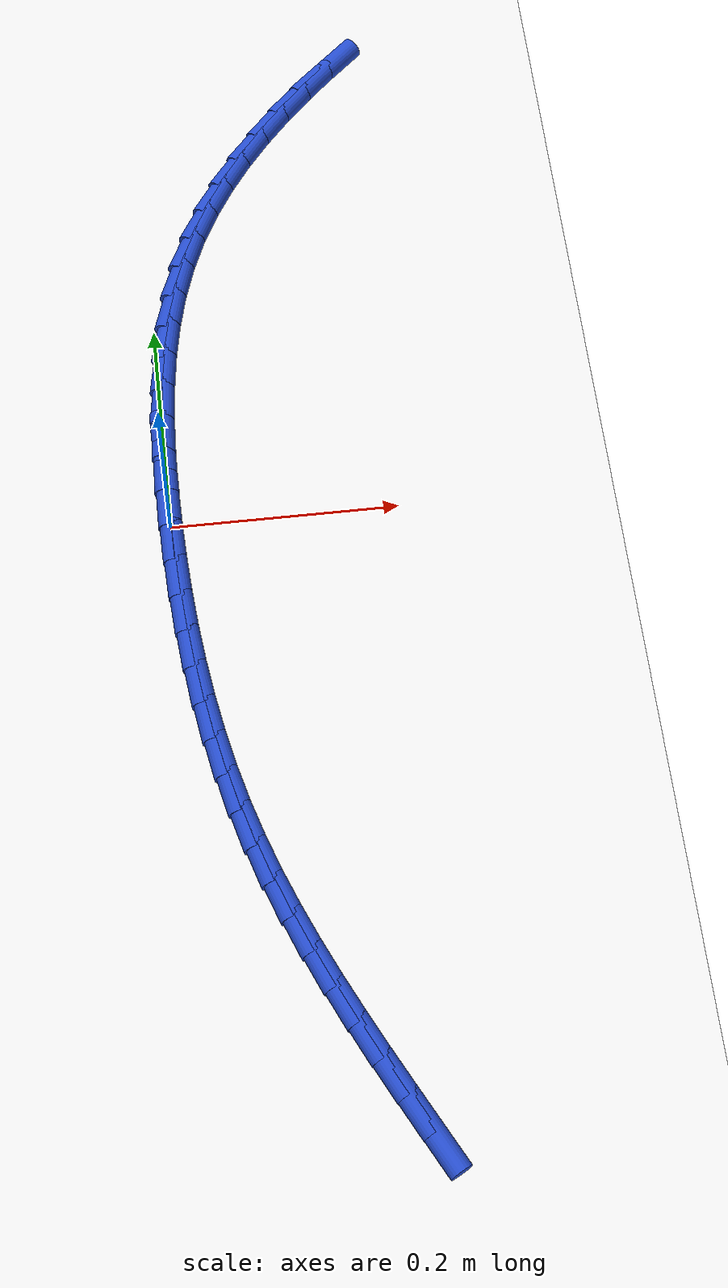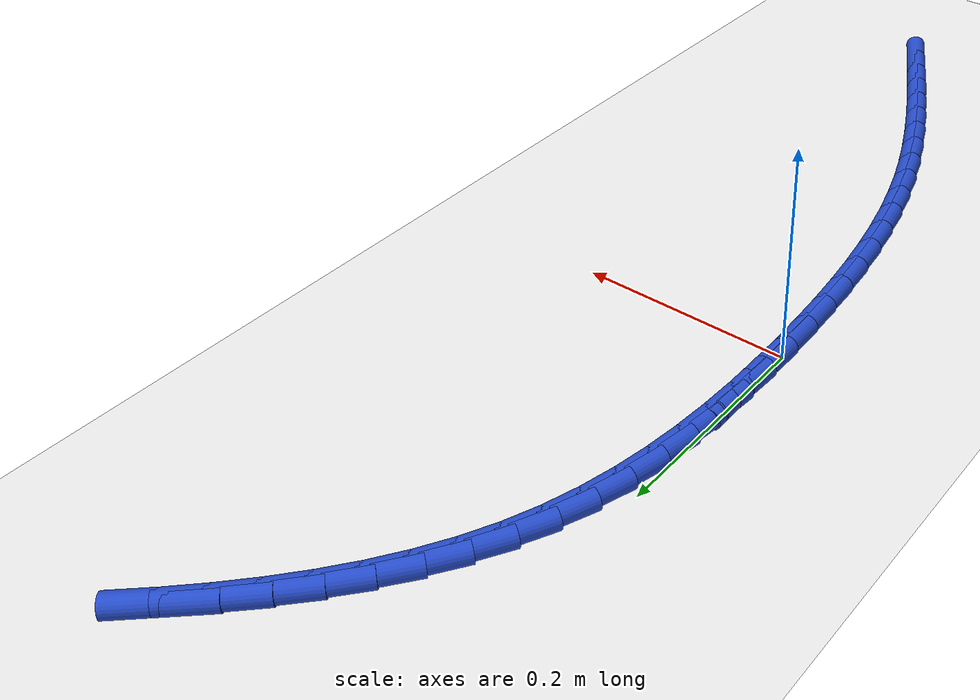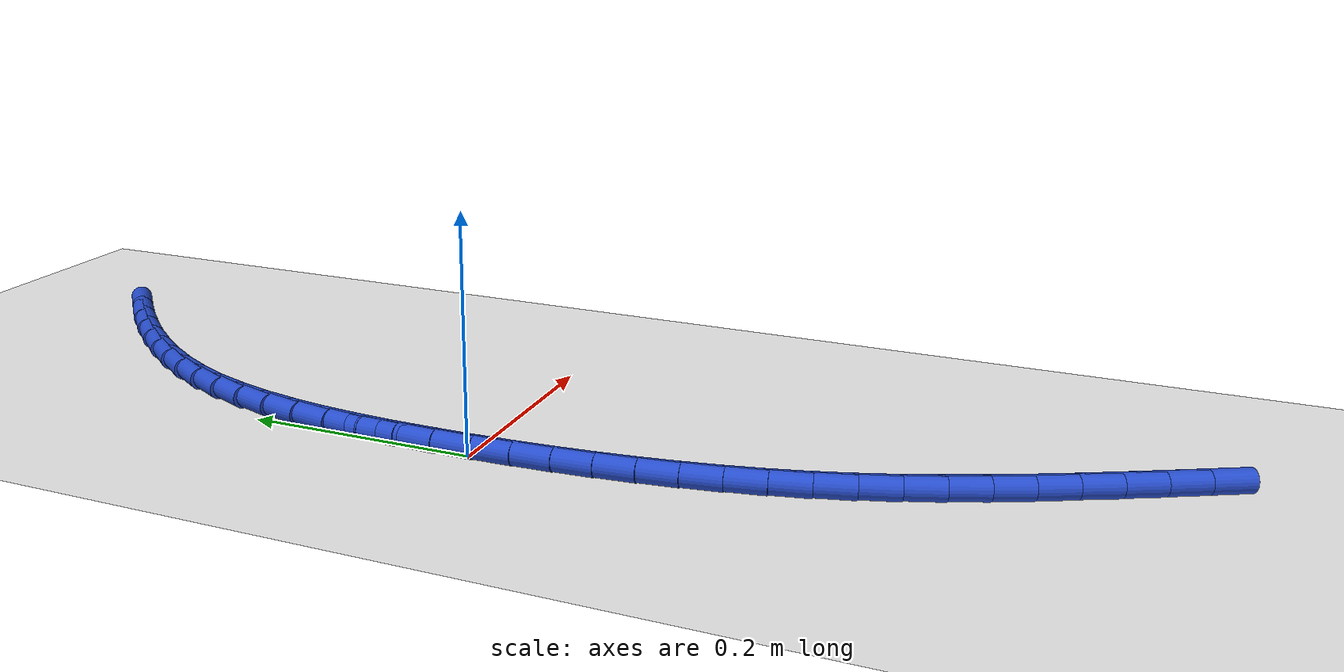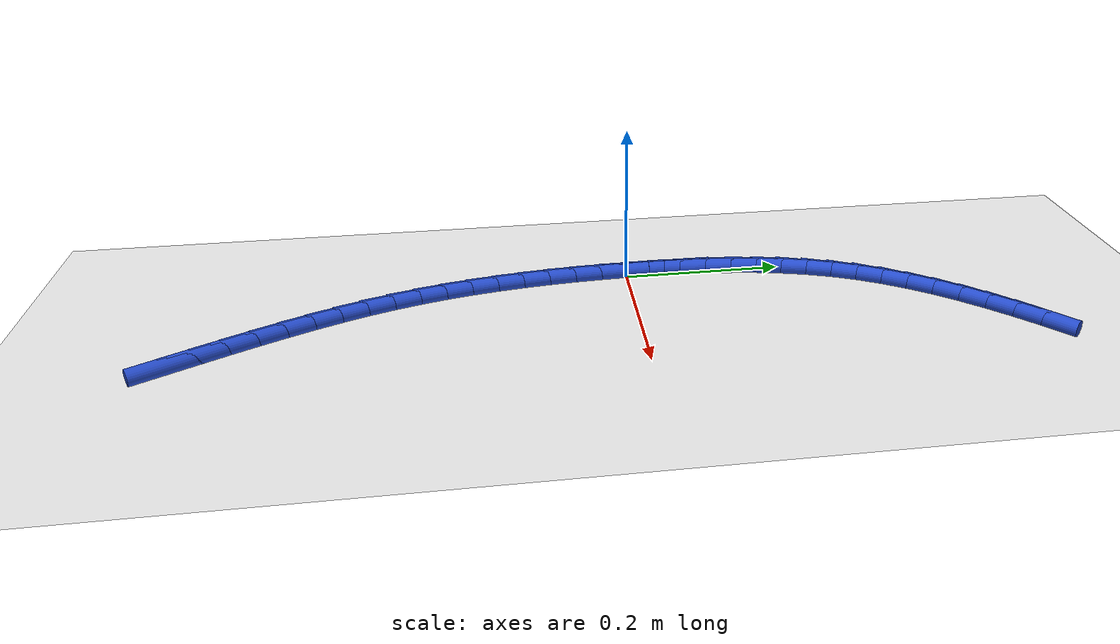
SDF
<sdf version="1.6">
 <world name="default">
  <model name="ground_plane">
   <static>1</static>
   <link name="link">
    <collision name="collision">
     <geometry><plane><normal>0 0 1</normal><size>100 100</size></plane></geometry>
     <surface><friction><ode><mu>100</mu><mu2>50</mu2></ode></friction></surface>
    </collision>
    <visual name="visual">
     <cast_shadows>0</cast_shadows>
     <geometry><plane><normal>0 0 1</normal><size>100 100</size></plane></geometry>
     <material>
      <script><uri>file://media/materials/scripts/gazebo.material</uri><name>Gazebo/WhiteGlow</name></script>
     </material>
    </visual>
   </link>
  </model>
  <model name="line">
   <link name="link_0">
    <pose>1.0408340855860843e-17 2.7755575615628914e-17 0.01 0 1.57 -1.557937915153163</pose>
    <collision name="collision">
     <geometry><cylinder><radius>0.01</radius><length>0.08</length></cylinder></geometry>
    </collision>
    <visual name="visual">
     <material>
      <script><name>Gazebo/Blue</name><uri>file://media/materials/scripts/gazebo.material</uri></script>
     </material>
     <geometry><cylinder><radius>0.01</radius><length>0.08</length></cylinder></geometry>
    </visual>
   </link>
   <link name="link_1">
    <pose>-0.0004366516335810031 0.03395657102417911 0.01 0 1.57 1.557288796669142</pose>
    <collision name="collision">
     <geometry><cylinder><radius>0.01</radius><length>0.08</length></cylinder></geometry>
    </collision>
    <visual name="visual">
     <material>
      <script><name>Gazebo/Blue</name><uri>file://media/materials/scripts/gazebo.material</uri></script>
     </material>
     <geometry><cylinder><radius>0.01</radius><length>0.08</length></cylinder></geometry>
    </visual>
   </link>
   <link name="link_2">
    <pose>2.20297661370606e-05 0.06791196472825632 0.01 0 1.57 1.524633570331081</pose>
    <collision name="collision">
     <geometry><cylinder><radius>0.01</radius><length>0.08</length></cylinder></geometry>
    </collision>
    <visual name="visual">
     <material>
      <script><name>Gazebo/Blue</name><uri>file://media/materials/scripts/gazebo.material</uri></script>
     </material>
     <geometry><cylinder><radius>0.01</radius><length>0.08</length></cylinder></geometry>
    </visual>
   </link>
   <link name="link_3">
    <pose>0.001583885330539901 0.10172160020500445 0.01 0 1.57 1.4852973023227518</pose>
    <collision name="collision">
     <geometry><cylinder><radius>0.01</radius><length>0.08</length></cylinder></geometry>
    </collision>
    <visual name="visual">
     <material>
      <script><name>Gazebo/Blue</name><uri>file://media/materials/scripts/gazebo.material</uri></script>
     </material>
     <geometry><cylinder><radius>0.01</radius><length>0.08</length></cylinder></geometry>
    </visual>
   </link>
   <link name="link_4">
    <pose>0.004456756191013208 0.13524089654719626 0.01 0 1.57 1.438824625745498</pose>
    <collision name="collision">
     <geometry><cylinder><radius>0.01</radius><length>0.08</length></cylinder></geometry>
    </collision>
    <visual name="visual">
     <material>
      <script><name>Gazebo/Blue</name><uri>file://media/materials/scripts/gazebo.material</uri></script>
     </material>
     <geometry><cylinder><radius>0.01</radius><length>0.08</length></cylinder></geometry>
    </visual>
   </link>
   <link name="link_5">
    <pose>0.008848483478942688 0.16832527284760457 0.01 0 1.57 1.3847423070873557</pose>
    <collision name="collision">
     <geometry><cylinder><radius>0.01</radius><length>0.08</length></cylinder></geometry>
    </collision>
    <visual name="visual">
     <material>
      <script><name>Gazebo/Blue</name><uri>file://media/materials/scripts/gazebo.material</uri></script>
     </material>
     <geometry><cylinder><radius>0.01</radius><length>0.08</length></cylinder></geometry>
    </visual>
   </link>
   <link name="link_6">
    <pose>0.014966908325714024 0.200830148199002 0.01 0 1.57 1.322628793208983</pose>
    <collision name="collision">
     <geometry><cylinder><radius>0.01</radius><length>0.08</length></cylinder></geometry>
    </collision>
    <visual name="visual">
     <material>
      <script><name>Gazebo/Blue</name><uri>file://media/materials/scripts/gazebo.material</uri></script>
     </material>
     <geometry><cylinder><radius>0.01</radius><length>0.08</length></cylinder></geometry>
    </visual>
   </link>
   <link name="link_7">
    <pose>0.023019871862712912 0.23261094169416136 0.01 0 1.57 1.2522138872958029</pose>
    <collision name="collision">
     <geometry><cylinder><radius>0.01</radius><length>0.08</length></cylinder></geometry>
    </collision>
    <visual name="visual">
     <material>
      <script><name>Gazebo/Blue</name><uri>file://media/materials/scripts/gazebo.material</uri></script>
     </material>
     <geometry><cylinder><radius>0.01</radius><length>0.08</length></cylinder></geometry>
    </visual>
   </link>
   <link name="link_8">
    <pose>0.03321521522132507 0.2635230724258556 0.01 0 1.57 1.1736570817971768</pose>
    <collision name="collision">
     <geometry><cylinder><radius>0.01</radius><length>0.08</length></cylinder></geometry>
    </collision>
    <visual name="visual">
     <material>
      <script><name>Gazebo/Blue</name><uri>file://media/materials/scripts/gazebo.material</uri></script>
     </material>
     <geometry><cylinder><radius>0.01</radius><length>0.08</length></cylinder></geometry>
    </visual>
   </link>
   <link name="link_9">
    <pose>0.04575639282164466 0.2934239436651608 0.01 0 1.57 1.093315271874987</pose>
    <collision name="collision">
     <geometry><cylinder><radius>0.01</radius><length>0.08</length></cylinder></geometry>
    </collision>
    <visual name="visual">
     <material>
      <script><name>Gazebo/Blue</name><uri>file://media/materials/scripts/gazebo.material</uri></script>
     </material>
     <geometry><cylinder><radius>0.01</radius><length>0.08</length></cylinder></geometry>
    </visual>
   </link>
   <link name="link_10">
    <pose>0.06067151824599799 0.32225026809352914 0.01 0 1.57 1.0195763641413083</pose>
    <collision name="collision">
     <geometry><cylinder><radius>0.01</radius><length>0.08</length></cylinder></geometry>
    </collision>
    <visual name="visual">
     <material>
      <script><name>Gazebo/Blue</name><uri>file://media/materials/scripts/gazebo.material</uri></script>
     </material>
     <geometry><cylinder><radius>0.01</radius><length>0.08</length></cylinder></geometry>
    </visual>
   </link>
   <link name="link_11">
    <pose>0.07775811025583163 0.3500430600457663 0.01 0 1.57 0.9532256891473085</pose>
    <collision name="collision">
     <geometry><cylinder><radius>0.01</radius><length>0.08</length></cylinder></geometry>
    </collision>
    <visual name="visual">
     <material>
      <script><name>Gazebo/Blue</name><uri>file://media/materials/scripts/gazebo.material</uri></script>
     </material>
     <geometry><cylinder><radius>0.01</radius><length>0.08</length></cylinder></geometry>
    </visual>
   </link>
   <link name="link_12">
    <pose>0.096797989507644 0.3768504343557028 0.01 0 1.57 0.8941977770259731</pose>
    <collision name="collision">
     <geometry><cylinder><radius>0.01</radius><length>0.08</length></cylinder></geometry>
    </collision>
    <visual name="visual">
     <material>
      <script><name>Gazebo/Blue</name><uri>file://media/materials/scripts/gazebo.material</uri></script>
     </material>
     <geometry><cylinder><radius>0.01</radius><length>0.08</length></cylinder></geometry>
    </visual>
   </link>
   <link name="link_13">
    <pose>0.11757297665793337 0.4027205058571686 0.01 0 1.57 0.8422188590748143</pose>
    <collision name="collision">
     <geometry><cylinder><radius>0.01</radius><length>0.08</length></cylinder></geometry>
    </collision>
    <visual name="visual">
     <material>
      <script><name>Gazebo/Blue</name><uri>file://media/materials/scripts/gazebo.material</uri></script>
     </material>
     <geometry><cylinder><radius>0.01</radius><length>0.08</length></cylinder></geometry>
    </visual>
   </link>
   <link name="link_14">
    <pose>0.1398648923631981 0.42770138938399394 0.01 0 1.57 0.7969027888582101</pose>
    <collision name="collision">
     <geometry><cylinder><radius>0.01</radius><length>0.08</length></cylinder></geometry>
    </collision>
    <visual name="visual">
     <material>
      <script><name>Gazebo/Blue</name><uri>file://media/materials/scripts/gazebo.material</uri></script>
     </material>
     <geometry><cylinder><radius>0.01</radius><length>0.08</length></cylinder></geometry>
    </visual>
   </link>
   <link name="link_15">
    <pose>0.16345555727993652 0.45184119977000886 0.01 0 1.57 0.7578242402563893</pose>
    <collision name="collision">
     <geometry><cylinder><radius>0.01</radius><length>0.08</length></cylinder></geometry>
    </collision>
    <visual name="visual">
     <material>
      <script><name>Gazebo/Blue</name><uri>file://media/materials/scripts/gazebo.material</uri></script>
     </material>
     <geometry><cylinder><radius>0.01</radius><length>0.08</length></cylinder></geometry>
    </visual>
   </link>
   <link name="link_16">
    <pose>0.18812679206464697 0.4751880518490437 0.01 0 1.57 0.7245700439027598</pose>
    <collision name="collision">
     <geometry><cylinder><radius>0.01</radius><length>0.08</length></cylinder></geometry>
    </collision>
    <visual name="visual">
     <material>
      <script><name>Gazebo/Blue</name><uri>file://media/materials/scripts/gazebo.material</uri></script>
     </material>
     <geometry><cylinder><radius>0.01</radius><length>0.08</length></cylinder></geometry>
    </visual>
   </link>
   <link name="link_203">
    <pose>0.15532045816238652 -0.5342670666308575 0.01 0 1.57 -1.079537989722851</pose>
    <collision name="collision">
     <geometry><cylinder><radius>0.01</radius><length>0.08</length></cylinder></geometry>
    </collision>
    <visual name="visual">
     <material>
      <script><name>Gazebo/Blue</name><uri>file://media/materials/scripts/gazebo.material</uri></script>
     </material>
     <geometry><cylinder><radius>0.01</radius><length>0.08</length></cylinder></geometry>
    </visual>
   </link>
   <link name="link_204">
    <pose>0.13914565993398492 -0.5040341137163389 0.01 0 1.57 -1.0863584745922015</pose>
    <collision name="collision">
     <geometry><cylinder><radius>0.01</radius><length>0.08</length></cylinder></geometry>
    </collision>
    <visual name="visual">
     <material>
      <script><name>Gazebo/Blue</name><uri>file://media/materials/scripts/gazebo.material</uri></script>
     </material>
     <geometry><cylinder><radius>0.01</radius><length>0.08</length></cylinder></geometry>
    </visual>
   </link>
   <link name="link_205">
    <pose>0.12337797347080216 -0.47407259606805185 0.01 0 1.57 -1.0981819711825598</pose>
    <collision name="collision">
     <geometry><cylinder><radius>0.01</radius><length>0.08</length></cylinder></geometry>
    </collision>
    <visual name="visual">
     <material>
      <script><name>Gazebo/Blue</name><uri>file://media/materials/scripts/gazebo.material</uri></script>
     </material>
     <geometry><cylinder><radius>0.01</radius><length>0.08</length></cylinder></geometry>
    </visual>
   </link>
   <link name="link_206">
    <pose>0.10814344351397656 -0.44427454151722623 0.01 0 1.57 -1.1151407507029443</pose>
    <collision name="collision">
     <geometry><cylinder><radius>0.01</radius><length>0.08</length></cylinder></geometry>
    </collision>
    <visual name="visual">
     <material>
      <script><name>Gazebo/Blue</name><uri>file://media/materials/scripts/gazebo.material</uri></script>
     </material>
     <geometry><cylinder><radius>0.01</radius><length>0.08</length></cylinder></geometry>
    </visual>
   </link>
   <link name="link_207">
    <pose>0.09356811480464615 -0.4145319778950918 0.01 0 1.57 -1.137323178983331</pose>
    <collision name="collision">
     <geometry><cylinder><radius>0.01</radius><length>0.08</length></cylinder></geometry>
    </collision>
    <visual name="visual">
     <material>
      <script><name>Gazebo/Blue</name><uri>file://media/materials/scripts/gazebo.material</uri></script>
     </material>
     <geometry><cylinder><radius>0.01</radius><length>0.08</length></cylinder></geometry>
    </visual>
   </link>
   <link name="link_208">
    <pose>0.07977803208395001 -0.3847369330328802 0.01 0 1.57 -1.164756653046397</pose>
    <collision name="collision">
     <geometry><cylinder><radius>0.01</radius><length>0.08</length></cylinder></geometry>
    </collision>
    <visual name="visual">
     <material>
      <script><name>Gazebo/Blue</name><uri>file://media/materials/scripts/gazebo.material</uri></script>
     </material>
     <geometry><cylinder><radius>0.01</radius><length>0.08</length></cylinder></geometry>
    </visual>
   </link>
   <link name="link_209">
    <pose>0.06689924009302614 -0.35478143476182084 0.01 0 1.57 -1.197386782056638</pose>
    <collision name="collision">
     <geometry><cylinder><radius>0.01</radius><length>0.08</length></cylinder></geometry>
    </collision>
    <visual name="visual">
     <material>
      <script><name>Gazebo/Blue</name><uri>file://media/materials/scripts/gazebo.material</uri></script>
     </material>
     <geometry><cylinder><radius>0.01</radius><length>0.08</length></cylinder></geometry>
    </visual>
   </link>
   <link name="link_210">
    <pose>0.05505778357301295 -0.3245575109131442 0.01 0 1.57 -1.235054484551227</pose>
    <collision name="collision">
     <geometry><cylinder><radius>0.01</radius><length>0.08</length></cylinder></geometry>
    </collision>
    <visual name="visual">
     <material>
      <script><name>Gazebo/Blue</name><uri>file://media/materials/scripts/gazebo.material</uri></script>
     </material>
     <geometry><cylinder><radius>0.01</radius><length>0.08</length></cylinder></geometry>
    </visual>
   </link>
   <link name="link_211">
    <pose>0.0443797072650488 -0.2939571893180804 0.01 0 1.57 -1.2772047141815945</pose>
    <collision name="collision">
     <geometry><cylinder><radius>0.01</radius><length>0.08</length></cylinder></geometry>
    </collision>
    <visual name="visual">
     <material>
      <script><name>Gazebo/Blue</name><uri>file://media/materials/scripts/gazebo.material</uri></script>
     </material>
     <geometry><cylinder><radius>0.01</radius><length>0.08</length></cylinder></geometry>
    </visual>
   </link>
   <link name="link_212">
    <pose>0.03498362031164692 -0.2628781193175852 0.01 0 1.57 -1.3195590934892143</pose>
    <collision name="collision">
     <geometry><cylinder><radius>0.01</radius><length>0.08</length></cylinder></geometry>
    </collision>
    <visual name="visual">
     <material>
      <script><name>Gazebo/Blue</name><uri>file://media/materials/scripts/gazebo.material</uri></script>
     </material>
     <geometry><cylinder><radius>0.01</radius><length>0.08</length></cylinder></geometry>
    </visual>
   </link>
   <link name="link_213">
    <pose>0.026878907809571823 -0.23130052652743913 0.01 0 1.57 -1.359023486794894</pose>
    <collision name="collision">
     <geometry><cylinder><radius>0.01</radius><length>0.08</length></cylinder></geometry>
    </collision>
    <visual name="visual">
     <material>
      <script><name>Gazebo/Blue</name><uri>file://media/materials/scripts/gazebo.material</uri></script>
     </material>
     <geometry><cylinder><radius>0.01</radius><length>0.08</length></cylinder></geometry>
    </visual>
   </link>
   <link name="link_214">
    <pose>0.019991902531979067 -0.19926742632232236 0.01 0 1.57 -1.395537492317201</pose>
    <collision name="collision">
     <geometry><cylinder><radius>0.01</radius><length>0.08</length></cylinder></geometry>
    </collision>
    <visual name="visual">
     <material>
      <script><name>Gazebo/Blue</name><uri>file://media/materials/scripts/gazebo.material</uri></script>
     </material>
     <geometry><cylinder><radius>0.01</radius><length>0.08</length></cylinder></geometry>
    </visual>
   </link>
   <link name="link_215">
    <pose>0.014246859432787374 -0.16682340496335585 0.01 0 1.57 -1.4291492152353908</pose>
    <collision name="collision">
     <geometry><cylinder><radius>0.01</radius><length>0.08</length></cylinder></geometry>
    </collision>
    <visual name="visual">
     <material>
      <script><name>Gazebo/Blue</name><uri>file://media/materials/scripts/gazebo.material</uri></script>
     </material>
     <geometry><cylinder><radius>0.01</radius><length>0.08</length></cylinder></geometry>
    </visual>
   </link>
   <link name="link_216">
    <pose>0.009568033465915369 -0.1340130487116594 0.01 0 1.57 -1.459930146411641</pose>
    <collision name="collision">
     <geometry><cylinder><radius>0.01</radius><length>0.08</length></cylinder></geometry>
    </collision>
    <visual name="visual">
     <material>
      <script><name>Gazebo/Blue</name><uri>file://media/materials/scripts/gazebo.material</uri></script>
     </material>
     <geometry><cylinder><radius>0.01</radius><length>0.08</length></cylinder></geometry>
    </visual>
   </link>
   <link name="link_217">
    <pose>0.005879679585281983 -0.10088094382835538 0.01 0 1.57 -1.4879665883128343</pose>
    <collision name="collision">
     <geometry><cylinder><radius>0.01</radius><length>0.08</length></cylinder></geometry>
    </collision>
    <visual name="visual">
     <material>
      <script><name>Gazebo/Blue</name><uri>file://media/materials/scripts/gazebo.material</uri></script>
     </material>
     <geometry><cylinder><radius>0.01</radius><length>0.08</length></cylinder></geometry>
    </visual>
   </link>
   <link name="link_218">
    <pose>0.003106052744805819 -0.06747167657456377 0.01 0 1.57 -1.513352494693313</pose>
    <collision name="collision">
     <geometry><cylinder><radius>0.01</radius><length>0.08</length></cylinder></geometry>
    </collision>
    <visual name="visual">
     <material>
      <script><name>Gazebo/Blue</name><uri>file://media/materials/scripts/gazebo.material</uri></script>
     </material>
     <geometry><cylinder><radius>0.01</radius><length>0.08</length></cylinder></geometry>
    </visual>
   </link>
   <link name="link_219">
    <pose>0.001171407898405594 -0.03382983321140529 0.01 0 1.57 -1.5361836800900597</pose>
    <collision name="collision">
     <geometry><cylinder><radius>0.01</radius><length>0.08</length></cylinder></geometry>
    </collision>
    <visual name="visual">
     <material>
      <script><name>Gazebo/Blue</name><uri>file://media/materials/scripts/gazebo.material</uri></script>
     </material>
     <geometry><cylinder><radius>0.01</radius><length>0.08</length></cylinder></geometry>
    </visual>
   </link>
   <link name="link_220">
    <pose>6.938893903907228e-18 1.457167719820518e-16 0.01 0 1.57 -1.556553254352468</pose>
    <collision name="collision">
     <geometry><cylinder><radius>0.01</radius><length>0.08</length></cylinder></geometry>
    </collision>
    <visual name="visual">
     <material>
      <script><name>Gazebo/Blue</name><uri>file://media/materials/scripts/gazebo.material</uri></script>
     </material>
     <geometry><cylinder><radius>0.01</radius><length>0.08</length></cylinder></geometry>
    </visual>
   </link>
   <link name="link_221">
    <pose>-0.00048391599649216235 0.03397323679852931 0.01 0 1.57 1.5670445641597017</pose>
    <collision name="collision">
     <geometry><cylinder><radius>0.01</radius><length>0.08</length></cylinder></geometry>
    </collision>
    <visual name="visual">
     <material>
      <script><name>Gazebo/Blue</name><uri>file://media/materials/scripts/gazebo.material</uri></script>
     </material>
     <geometry><cylinder><radius>0.01</radius><length>0.08</length></cylinder></geometry>
    </visual>
   </link>
   <link name="link_222">
    <pose>-0.00035608513715224563 0.06804529092306477 0.01 0 1.57 -1.5655633138718799</pose>
    <collision name="collision">
     <geometry><cylinder><radius>0.01</radius><length>0.08</length></cylinder></geometry>
    </collision>
    <visual name="visual">
     <material>
      <script><name>Gazebo/Blue</name><uri>file://media/materials/scripts/gazebo.material</uri></script>
     </material>
     <geometry><cylinder><radius>0.01</radius><length>0.08</length></cylinder></geometry>
    </visual>
   </link>
  </model>
 </world>
</sdf>
